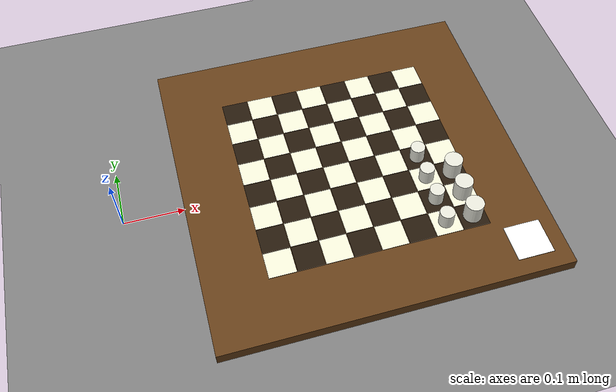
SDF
<sdf version="1.8">
 <world name="arm_world">
  <model name="ground_plane">
   <static>true</static>
   <link name="link">
    <collision name="collision">
     <geometry><plane><normal>0 0 1</normal><size>20 20</size></plane></geometry>
    </collision>
    <visual name="visual">
     <geometry><plane><normal>0 0 1</normal><size>20 20</size></plane></geometry>
     <material><ambient>0.3 0.3 0.3 1</ambient><diffuse>0.5 0.5 0.5 1</diffuse></material>
    </visual>
   </link>
  </model>
  <model name="chess_board">
   <static>true</static>
   <pose>0.3575 -0.0175 0.01 0 0 0</pose>
   <link name="link">
    <collision name="collision"><geometry><box><size>0.375 0.375 0.02</size></box></geometry></collision>
    <visual name="board_base">
     <pose>0.0225 0.0225 0 0 0 0</pose>
     <geometry><box><size>0.56 0.56 0.02</size></box></geometry>
     <material><ambient>0.4 0.25 0.1 1</ambient><diffuse>0.4 0.25 0.1 1</diffuse></material>
    </visual>
    <visual name="sq_a1">
     <pose>-0.135 -0.135 0.011 0 0 0</pose>
     <geometry><box><size>0.044 0.044 0.001</size></box></geometry>
     <material><ambient>0.95 0.95 0.85 1</ambient><diffuse>0.95 0.95 0.85 1</diffuse></material>
    </visual>
    <visual name="sq_b1">
     <pose>-0.135 -0.090 0.011 0 0 0</pose>
     <geometry><box><size>0.044 0.044 0.001</size></box></geometry>
     <material><ambient>0.15 0.10 0.05 1</ambient><diffuse>0.15 0.10 0.05 1</diffuse></material>
    </visual>
    <visual name="sq_c1">
     <pose>-0.135 -0.045 0.011 0 0 0</pose>
     <geometry><box><size>0.044 0.044 0.001</size></box></geometry>
     <material><ambient>0.95 0.95 0.85 1</ambient><diffuse>0.95 0.95 0.85 1</diffuse></material>
    </visual>
    <visual name="sq_d1">
     <pose>-0.135  0.000 0.011 0 0 0</pose>
     <geometry><box><size>0.044 0.044 0.001</size></box></geometry>
     <material><ambient>0.15 0.10 0.05 1</ambient><diffuse>0.15 0.10 0.05 1</diffuse></material>
    </visual>
    <visual name="sq_e1">
     <pose>-0.135  0.045 0.011 0 0 0</pose>
     <geometry><box><size>0.044 0.044 0.001</size></box></geometry>
     <material><ambient>0.95 0.95 0.85 1</ambient><diffuse>0.95 0.95 0.85 1</diffuse></material>
    </visual>
    <visual name="sq_f1">
     <pose>-0.135  0.090 0.011 0 0 0</pose>
     <geometry><box><size>0.044 0.044 0.001</size></box></geometry>
     <material><ambient>0.15 0.10 0.05 1</ambient><diffuse>0.15 0.10 0.05 1</diffuse></material>
    </visual>
    <visual name="sq_g1">
     <pose>-0.135  0.135 0.011 0 0 0</pose>
     <geometry><box><size>0.044 0.044 0.001</size></box></geometry>
     <material><ambient>0.95 0.95 0.85 1</ambient><diffuse>0.95 0.95 0.85 1</diffuse></material>
    </visual>
    <visual name="sq_h1">
     <pose>-0.135  0.180 0.011 0 0 0</pose>
     <geometry><box><size>0.044 0.044 0.001</size></box></geometry>
     <material><ambient>0.15 0.10 0.05 1</ambient><diffuse>0.15 0.10 0.05 1</diffuse></material>
    </visual>
    <visual name="sq_a2">
     <pose>-0.090 -0.135 0.011 0 0 0</pose>
     <geometry><box><size>0.044 0.044 0.001</size></box></geometry>
     <material><ambient>0.15 0.10 0.05 1</ambient><diffuse>0.15 0.10 0.05 1</diffuse></material>
    </visual>
    <visual name="sq_b2">
     <pose>-0.090 -0.090 0.011 0 0 0</pose>
     <geometry><box><size>0.044 0.044 0.001</size></box></geometry>
     <material><ambient>0.95 0.95 0.85 1</ambient><diffuse>0.95 0.95 0.85 1</diffuse></material>
    </visual>
    <visual name="sq_c2">
     <pose>-0.090 -0.045 0.011 0 0 0</pose>
     <geometry><box><size>0.044 0.044 0.001</size></box></geometry>
     <material><ambient>0.15 0.10 0.05 1</ambient><diffuse>0.15 0.10 0.05 1</diffuse></material>
    </visual>
    <visual name="sq_d2">
     <pose>-0.090  0.000 0.011 0 0 0</pose>
     <geometry><box><size>0.044 0.044 0.001</size></box></geometry>
     <material><ambient>0.95 0.95 0.85 1</ambient><diffuse>0.95 0.95 0.85 1</diffuse></material>
    </visual>
    <visual name="sq_e2">
     <pose>-0.090  0.045 0.011 0 0 0</pose>
     <geometry><box><size>0.044 0.044 0.001</size></box></geometry>
     <material><ambient>0.15 0.10 0.05 1</ambient><diffuse>0.15 0.10 0.05 1</diffuse></material>
    </visual>
    <visual name="sq_f2">
     <pose>-0.090  0.090 0.011 0 0 0</pose>
     <geometry><box><size>0.044 0.044 0.001</size></box></geometry>
     <material><ambient>0.95 0.95 0.85 1</ambient><diffuse>0.95 0.95 0.85 1</diffuse></material>
    </visual>
    <visual name="sq_g2">
     <pose>-0.090  0.135 0.011 0 0 0</pose>
     <geometry><box><size>0.044 0.044 0.001</size></box></geometry>
     <material><ambient>0.15 0.10 0.05 1</ambient><diffuse>0.15 0.10 0.05 1</diffuse></material>
    </visual>
    <visual name="sq_h2">
     <pose>-0.090  0.180 0.011 0 0 0</pose>
     <geometry><box><size>0.044 0.044 0.001</size></box></geometry>
     <material><ambient>0.95 0.95 0.85 1</ambient><diffuse>0.95 0.95 0.85 1</diffuse></material>
    </visual>
    <visual name="sq_a3">
     <pose>-0.045 -0.135 0.011 0 0 0</pose>
     <geometry><box><size>0.044 0.044 0.001</size></box></geometry>
     <material><ambient>0.95 0.95 0.85 1</ambient><diffuse>0.95 0.95 0.85 1</diffuse></material>
    </visual>
    <visual name="sq_b3">
     <pose>-0.045 -0.090 0.011 0 0 0</pose>
     <geometry><box><size>0.044 0.044 0.001</size></box></geometry>
     <material><ambient>0.15 0.10 0.05 1</ambient><diffuse>0.15 0.10 0.05 1</diffuse></material>
    </visual>
    <visual name="sq_c3">
     <pose>-0.045 -0.045 0.011 0 0 0</pose>
     <geometry><box><size>0.044 0.044 0.001</size></box></geometry>
     <material><ambient>0.95 0.95 0.85 1</ambient><diffuse>0.95 0.95 0.85 1</diffuse></material>
    </visual>
    <visual name="sq_d3">
     <pose>-0.045  0.000 0.011 0 0 0</pose>
     <geometry><box><size>0.044 0.044 0.001</size></box></geometry>
     <material><ambient>0.15 0.10 0.05 1</ambient><diffuse>0.15 0.10 0.05 1</diffuse></material>
    </visual>
    <visual name="sq_e3">
     <pose>-0.045  0.045 0.011 0 0 0</pose>
     <geometry><box><size>0.044 0.044 0.001</size></box></geometry>
     <material><ambient>0.95 0.95 0.85 1</ambient><diffuse>0.95 0.95 0.85 1</diffuse></material>
    </visual>
    <visual name="sq_f3">
     <pose>-0.045  0.090 0.011 0 0 0</pose>
     <geometry><box><size>0.044 0.044 0.001</size></box></geometry>
     <material><ambient>0.15 0.10 0.05 1</ambient><diffuse>0.15 0.10 0.05 1</diffuse></material>
    </visual>
    <visual name="sq_g3">
     <pose>-0.045  0.135 0.011 0 0 0</pose>
     <geometry><box><size>0.044 0.044 0.001</size></box></geometry>
     <material><ambient>0.95 0.95 0.85 1</ambient><diffuse>0.95 0.95 0.85 1</diffuse></material>
    </visual>
    <visual name="sq_h3">
     <pose>-0.045  0.180 0.011 0 0 0</pose>
     <geometry><box><size>0.044 0.044 0.001</size></box></geometry>
     <material><ambient>0.15 0.10 0.05 1</ambient><diffuse>0.15 0.10 0.05 1</diffuse></material>
    </visual>
    <visual name="sq_a4">
     <pose>0.000 -0.135 0.011 0 0 0</pose>
     <geometry><box><size>0.044 0.044 0.001</size></box></geometry>
     <material><ambient>0.15 0.10 0.05 1</ambient><diffuse>0.15 0.10 0.05 1</diffuse></material>
    </visual>
    <visual name="sq_b4">
     <pose>0.000 -0.090 0.011 0 0 0</pose>
     <geometry><box><size>0.044 0.044 0.001</size></box></geometry>
     <material><ambient>0.95 0.95 0.85 1</ambient><diffuse>0.95 0.95 0.85 1</diffuse></material>
    </visual>
    <visual name="sq_c4">
     <pose>0.000 -0.045 0.011 0 0 0</pose>
     <geometry><box><size>0.044 0.044 0.001</size></box></geometry>
     <material><ambient>0.15 0.10 0.05 1</ambient><diffuse>0.15 0.10 0.05 1</diffuse></material>
    </visual>
    <visual name="sq_d4">
     <pose>0.000  0.000 0.011 0 0 0</pose>
     <geometry><box><size>0.044 0.044 0.001</size></box></geometry>
     <material><ambient>0.95 0.95 0.85 1</ambient><diffuse>0.95 0.95 0.85 1</diffuse></material>
    </visual>
    <visual name="sq_e4">
     <pose>0.000  0.045 0.011 0 0 0</pose>
     <geometry><box><size>0.044 0.044 0.001</size></box></geometry>
     <material><ambient>0.15 0.10 0.05 1</ambient><diffuse>0.15 0.10 0.05 1</diffuse></material>
    </visual>
    <visual name="sq_f4">
     <pose>0.000  0.090 0.011 0 0 0</pose>
     <geometry><box><size>0.044 0.044 0.001</size></box></geometry>
     <material><ambient>0.95 0.95 0.85 1</ambient><diffuse>0.95 0.95 0.85 1</diffuse></material>
    </visual>
    <visual name="sq_g4">
     <pose>0.000  0.135 0.011 0 0 0</pose>
     <geometry><box><size>0.044 0.044 0.001</size></box></geometry>
     <material><ambient>0.15 0.10 0.05 1</ambient><diffuse>0.15 0.10 0.05 1</diffuse></material>
    </visual>
    <visual name="sq_h4">
     <pose>0.000  0.180 0.011 0 0 0</pose>
     <geometry><box><size>0.044 0.044 0.001</size></box></geometry>
     <material><ambient>0.95 0.95 0.85 1</ambient><diffuse>0.95 0.95 0.85 1</diffuse></material>
    </visual>
    <visual name="sq_a5">
     <pose>0.045 -0.135 0.011 0 0 0</pose>
     <geometry><box><size>0.044 0.044 0.001</size></box></geometry>
     <material><ambient>0.95 0.95 0.85 1</ambient><diffuse>0.95 0.95 0.85 1</diffuse></material>
    </visual>
    <visual name="sq_b5">
     <pose>0.045 -0.090 0.011 0 0 0</pose>
     <geometry><box><size>0.044 0.044 0.001</size></box></geometry>
     <material><ambient>0.15 0.10 0.05 1</ambient><diffuse>0.15 0.10 0.05 1</diffuse></material>
    </visual>
    <visual name="sq_c5">
     <pose>0.045 -0.045 0.011 0 0 0</pose>
     <geometry><box><size>0.044 0.044 0.001</size></box></geometry>
     <material><ambient>0.95 0.95 0.85 1</ambient><diffuse>0.95 0.95 0.85 1</diffuse></material>
    </visual>
    <visual name="sq_d5">
     <pose>0.045  0.000 0.011 0 0 0</pose>
     <geometry><box><size>0.044 0.044 0.001</size></box></geometry>
     <material><ambient>0.15 0.10 0.05 1</ambient><diffuse>0.15 0.10 0.05 1</diffuse></material>
    </visual>
    <visual name="sq_e5">
     <pose>0.045  0.045 0.011 0 0 0</pose>
     <geometry><box><size>0.044 0.044 0.001</size></box></geometry>
     <material><ambient>0.95 0.95 0.85 1</ambient><diffuse>0.95 0.95 0.85 1</diffuse></material>
    </visual>
    <visual name="sq_f5">
     <pose>0.045  0.090 0.011 0 0 0</pose>
     <geometry><box><size>0.044 0.044 0.001</size></box></geometry>
     <material><ambient>0.15 0.10 0.05 1</ambient><diffuse>0.15 0.10 0.05 1</diffuse></material>
    </visual>
    <visual name="sq_g5">
     <pose>0.045  0.135 0.011 0 0 0</pose>
     <geometry><box><size>0.044 0.044 0.001</size></box></geometry>
     <material><ambient>0.95 0.95 0.85 1</ambient><diffuse>0.95 0.95 0.85 1</diffuse></material>
    </visual>
    <visual name="sq_h5">
     <pose>0.045  0.180 0.011 0 0 0</pose>
     <geometry><box><size>0.044 0.044 0.001</size></box></geometry>
     <material><ambient>0.15 0.10 0.05 1</ambient><diffuse>0.15 0.10 0.05 1</diffuse></material>
    </visual>
    <visual name="sq_a6">
     <pose>0.090 -0.135 0.011 0 0 0</pose>
     <geometry><box><size>0.044 0.044 0.001</size></box></geometry>
     <material><ambient>0.15 0.10 0.05 1</ambient><diffuse>0.15 0.10 0.05 1</diffuse></material>
    </visual>
    <visual name="sq_b6">
     <pose>0.090 -0.090 0.011 0 0 0</pose>
     <geometry><box><size>0.044 0.044 0.001</size></box></geometry>
     <material><ambient>0.95 0.95 0.85 1</ambient><diffuse>0.95 0.95 0.85 1</diffuse></material>
    </visual>
    <visual name="sq_c6">
     <pose>0.090 -0.045 0.011 0 0 0</pose>
     <geometry><box><size>0.044 0.044 0.001</size></box></geometry>
     <material><ambient>0.15 0.10 0.05 1</ambient><diffuse>0.15 0.10 0.05 1</diffuse></material>
    </visual>
    <visual name="sq_d6">
     <pose>0.090  0.000 0.011 0 0 0</pose>
     <geometry><box><size>0.044 0.044 0.001</size></box></geometry>
     <material><ambient>0.95 0.95 0.85 1</ambient><diffuse>0.95 0.95 0.85 1</diffuse></material>
    </visual>
    <visual name="sq_e6">
     <pose>0.090  0.045 0.011 0 0 0</pose>
     <geometry><box><size>0.044 0.044 0.001</size></box></geometry>
     <material><ambient>0.15 0.10 0.05 1</ambient><diffuse>0.15 0.10 0.05 1</diffuse></material>
    </visual>
    <visual name="sq_f6">
     <pose>0.090  0.090 0.011 0 0 0</pose>
     <geometry><box><size>0.044 0.044 0.001</size></box></geometry>
     <material><ambient>0.95 0.95 0.85 1</ambient><diffuse>0.95 0.95 0.85 1</diffuse></material>
    </visual>
    <visual name="sq_g6">
     <pose>0.090  0.135 0.011 0 0 0</pose>
     <geometry><box><size>0.044 0.044 0.001</size></box></geometry>
     <material><ambient>0.15 0.10 0.05 1</ambient><diffuse>0.15 0.10 0.05 1</diffuse></material>
    </visual>
    <visual name="sq_h6">
     <pose>0.090  0.180 0.011 0 0 0</pose>
     <geometry><box><size>0.044 0.044 0.001</size></box></geometry>
     <material><ambient>0.95 0.95 0.85 1</ambient><diffuse>0.95 0.95 0.85 1</diffuse></material>
    </visual>
    <visual name="sq_a7">
     <pose>0.135 -0.135 0.011 0 0 0</pose>
     <geometry><box><size>0.044 0.044 0.001</size></box></geometry>
     <material><ambient>0.95 0.95 0.85 1</ambient><diffuse>0.95 0.95 0.85 1</diffuse></material>
    </visual>
    <visual name="sq_b7">
     <pose>0.135 -0.090 0.011 0 0 0</pose>
     <geometry><box><size>0.044 0.044 0.001</size></box></geometry>
     <material><ambient>0.15 0.10 0.05 1</ambient><diffuse>0.15 0.10 0.05 1</diffuse></material>
    </visual>
    <visual name="sq_c7">
     <pose>0.135 -0.045 0.011 0 0 0</pose>
     <geometry><box><size>0.044 0.044 0.001</size></box></geometry>
     <material><ambient>0.95 0.95 0.85 1</ambient><diffuse>0.95 0.95 0.85 1</diffuse></material>
    </visual>
    <visual name="sq_d7">
     <pose>0.135  0.000 0.011 0 0 0</pose>
     <geometry><box><size>0.044 0.044 0.001</size></box></geometry>
     <material><ambient>0.15 0.10 0.05 1</ambient><diffuse>0.15 0.10 0.05 1</diffuse></material>
    </visual>
    <visual name="sq_e7">
     <pose>0.135  0.045 0.011 0 0 0</pose>
     <geometry><box><size>0.044 0.044 0.001</size></box></geometry>
     <material><ambient>0.95 0.95 0.85 1</ambient><diffuse>0.95 0.95 0.85 1</diffuse></material>
    </visual>
    <visual name="sq_f7">
     <pose>0.135  0.090 0.011 0 0 0</pose>
     <geometry><box><size>0.044 0.044 0.001</size></box></geometry>
     <material><ambient>0.15 0.10 0.05 1</ambient><diffuse>0.15 0.10 0.05 1</diffuse></material>
    </visual>
    <visual name="sq_g7">
     <pose>0.135  0.135 0.011 0 0 0</pose>
     <geometry><box><size>0.044 0.044 0.001</size></box></geometry>
     <material><ambient>0.95 0.95 0.85 1</ambient><diffuse>0.95 0.95 0.85 1</diffuse></material>
    </visual>
    <visual name="sq_h7">
     <pose>0.135  0.180 0.011 0 0 0</pose>
     <geometry><box><size>0.044 0.044 0.001</size></box></geometry>
     <material><ambient>0.15 0.10 0.05 1</ambient><diffuse>0.15 0.10 0.05 1</diffuse></material>
    </visual>
    <visual name="sq_a8">
     <pose>0.180 -0.135 0.011 0 0 0</pose>
     <geometry><box><size>0.044 0.044 0.001</size></box></geometry>
     <material><ambient>0.15 0.10 0.05 1</ambient><diffuse>0.15 0.10 0.05 1</diffuse></material>
    </visual>
    <visual name="sq_b8">
     <pose>0.180 -0.090 0.011 0 0 0</pose>
     <geometry><box><size>0.044 0.044 0.001</size></box></geometry>
     <material><ambient>0.95 0.95 0.85 1</ambient><diffuse>0.95 0.95 0.85 1</diffuse></material>
    </visual>
    <visual name="sq_c8">
     <pose>0.180 -0.045 0.011 0 0 0</pose>
     <geometry><box><size>0.044 0.044 0.001</size></box></geometry>
     <material><ambient>0.15 0.10 0.05 1</ambient><diffuse>0.15 0.10 0.05 1</diffuse></material>
    </visual>
    <visual name="sq_d8">
     <pose>0.180  0.000 0.011 0 0 0</pose>
     <geometry><box><size>0.044 0.044 0.001</size></box></geometry>
     <material><ambient>0.95 0.95 0.85 1</ambient><diffuse>0.95 0.95 0.85 1</diffuse></material>
    </visual>
    <visual name="sq_e8">
     <pose>0.180  0.045 0.011 0 0 0</pose>
     <geometry><box><size>0.044 0.044 0.001</size></box></geometry>
     <material><ambient>0.15 0.10 0.05 1</ambient><diffuse>0.15 0.10 0.05 1</diffuse></material>
    </visual>
    <visual name="sq_f8">
     <pose>0.180  0.090 0.011 0 0 0</pose>
     <geometry><box><size>0.044 0.044 0.001</size></box></geometry>
     <material><ambient>0.95 0.95 0.85 1</ambient><diffuse>0.95 0.95 0.85 1</diffuse></material>
    </visual>
    <visual name="sq_g8">
     <pose>0.180  0.135 0.011 0 0 0</pose>
     <geometry><box><size>0.044 0.044 0.001</size></box></geometry>
     <material><ambient>0.15 0.10 0.05 1</ambient><diffuse>0.15 0.10 0.05 1</diffuse></material>
    </visual>
    <visual name="sq_h8">
     <pose>0.180  0.180 0.011 0 0 0</pose>
     <geometry><box><size>0.044 0.044 0.001</size></box></geometry>
     <material><ambient>0.95 0.95 0.85 1</ambient><diffuse>0.95 0.95 0.85 1</diffuse></material>
    </visual>
   </link>
  </model>
  <model name="wp_bf1">
   <pose>0.5375 -0.0625 0.038 0 0 0</pose>
   <link name="l">
    <inertial>
     <mass>0.02</mass>
     <inertia>
      <ixx>0.000001</ixx>
      <iyy>0.000001</iyy>
      <izz>0.000001</izz>
      <ixy>0</ixy>
      <ixz>0</ixz>
      <iyz>0</iyz>
     </inertia>
    </inertial>
    <collision name="c">
     <geometry><cylinder><radius>0.015</radius><length>0.035</length></cylinder></geometry>
    </collision>
    <visual name="v">
     <geometry><cylinder><radius>0.015</radius><length>0.035</length></cylinder></geometry>
     <material><ambient>0.9 0.9 0.85 1</ambient><diffuse>0.9 0.9 0.85 1</diffuse></material>
    </visual>
   </link>
  </model>
  <model name="wp_ng1">
   <pose>0.5375 -0.1075 0.038 0 0 0</pose>
   <link name="l">
    <inertial>
     <mass>0.02</mass>
     <inertia>
      <ixx>0.000001</ixx>
      <iyy>0.000001</iyy>
      <izz>0.000001</izz>
      <ixy>0</ixy>
      <ixz>0</ixz>
      <iyz>0</iyz>
     </inertia>
    </inertial>
    <collision name="c">
     <geometry><cylinder><radius>0.015</radius><length>0.035</length></cylinder></geometry>
    </collision>
    <visual name="v">
     <geometry><cylinder><radius>0.015</radius><length>0.035</length></cylinder></geometry>
     <material><ambient>0.9 0.9 0.85 1</ambient><diffuse>0.9 0.9 0.85 1</diffuse></material>
    </visual>
   </link>
  </model>
  <model name="wp_rh1">
   <pose>0.5375 -0.1525 0.038 0 0 0</pose>
   <link name="l">
    <inertial>
     <mass>0.02</mass>
     <inertia>
      <ixx>0.000001</ixx>
      <iyy>0.000001</iyy>
      <izz>0.000001</izz>
      <ixy>0</ixy>
      <ixz>0</ixz>
      <iyz>0</iyz>
     </inertia>
    </inertial>
    <collision name="c">
     <geometry><cylinder><radius>0.015</radius><length>0.035</length></cylinder></geometry>
    </collision>
    <visual name="v">
     <geometry><cylinder><radius>0.015</radius><length>0.035</length></cylinder></geometry>
     <material><ambient>0.9 0.9 0.85 1</ambient><diffuse>0.9 0.9 0.85 1</diffuse></material>
    </visual>
   </link>
  </model>
  <model name="wp_pe2">
   <pose>0.4925 -0.0175 0.035 0 0 0</pose>
   <link name="l">
    <inertial>
     <mass>0.015</mass>
     <inertia>
      <ixx>0.000001</ixx>
      <iyy>0.000001</iyy>
      <izz>0.000001</izz>
      <ixy>0</ixy>
      <ixz>0</ixz>
      <iyz>0</iyz>
     </inertia>
    </inertial>
    <collision name="c">
     <geometry><cylinder><radius>0.012</radius><length>0.028</length></cylinder></geometry>
    </collision>
    <visual name="v">
     <geometry><cylinder><radius>0.012</radius><length>0.028</length></cylinder></geometry>
     <material><ambient>0.9 0.9 0.85 1</ambient><diffuse>0.9 0.9 0.85 1</diffuse></material>
    </visual>
   </link>
  </model>
  <model name="wp_pf2">
   <pose>0.4925 -0.0625 0.035 0 0 0</pose>
   <link name="l">
    <inertial>
     <mass>0.015</mass>
     <inertia>
      <ixx>0.000001</ixx>
      <iyy>0.000001</iyy>
      <izz>0.000001</izz>
      <ixy>0</ixy>
      <ixz>0</ixz>
      <iyz>0</iyz>
     </inertia>
    </inertial>
    <collision name="c">
     <geometry><cylinder><radius>0.012</radius><length>0.028</length></cylinder></geometry>
    </collision>
    <visual name="v">
     <geometry><cylinder><radius>0.012</radius><length>0.028</length></cylinder></geometry>
     <material><ambient>0.9 0.9 0.85 1</ambient><diffuse>0.9 0.9 0.85 1</diffuse></material>
    </visual>
   </link>
  </model>
  <model name="wp_pg2">
   <pose>0.4925 -0.1075 0.035 0 0 0</pose>
   <link name="l">
    <inertial>
     <mass>0.015</mass>
     <inertia>
      <ixx>0.000001</ixx>
      <iyy>0.000001</iyy>
      <izz>0.000001</izz>
      <ixy>0</ixy>
      <ixz>0</ixz>
      <iyz>0</iyz>
     </inertia>
    </inertial>
    <collision name="c">
     <geometry><cylinder><radius>0.012</radius><length>0.028</length></cylinder></geometry>
    </collision>
    <visual name="v">
     <geometry><cylinder><radius>0.012</radius><length>0.028</length></cylinder></geometry>
     <material><ambient>0.9 0.9 0.85 1</ambient><diffuse>0.9 0.9 0.85 1</diffuse></material>
    </visual>
   </link>
  </model>
  <model name="wp_ph2">
   <pose>0.4925 -0.1525 0.035 0 0 0</pose>
   <link name="l">
    <inertial>
     <mass>0.015</mass>
     <inertia>
      <ixx>0.000001</ixx>
      <iyy>0.000001</iyy>
      <izz>0.000001</izz>
      <ixy>0</ixy>
      <ixz>0</ixz>
      <iyz>0</iyz>
     </inertia>
    </inertial>
    <collision name="c">
     <geometry><cylinder><radius>0.012</radius><length>0.028</length></cylinder></geometry>
    </collision>
    <visual name="v">
     <geometry><cylinder><radius>0.012</radius><length>0.028</length></cylinder></geometry>
     <material><ambient>0.9 0.9 0.85 1</ambient><diffuse>0.9 0.9 0.85 1</diffuse></material>
    </visual>
   </link>
  </model>
  <model name="aruco_2">
   <static>true</static>
   <pose>0.6045 -0.2195 0.0215 0 0 0</pose>
   <link name="link">
    <visual name="visual">
     <geometry><box><size>0.060 0.060 0.001</size></box></geometry>
     <material>
      <diffuse>1 1 1 1</diffuse>
      <pbr>
       <metal>
        <albedo_map>file:///home/mario/Desktop/Arm/robot_arm_chess/materials/textures/aruco_2.png</albedo_map>
       </metal>
      </pbr>
     </material>
    </visual>
   </link>
  </model>
 </world>
</sdf>
